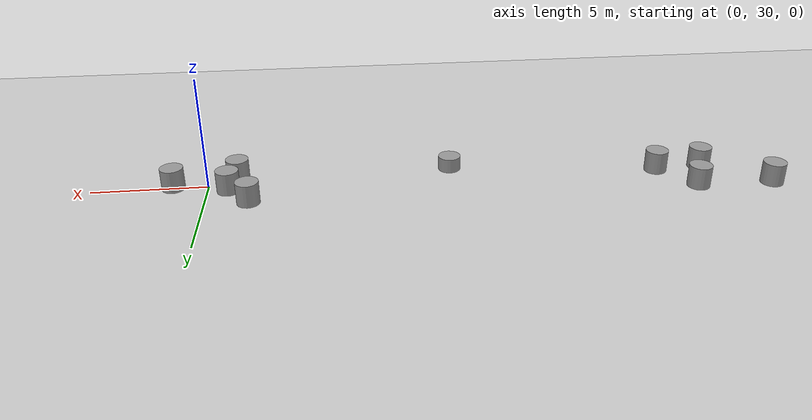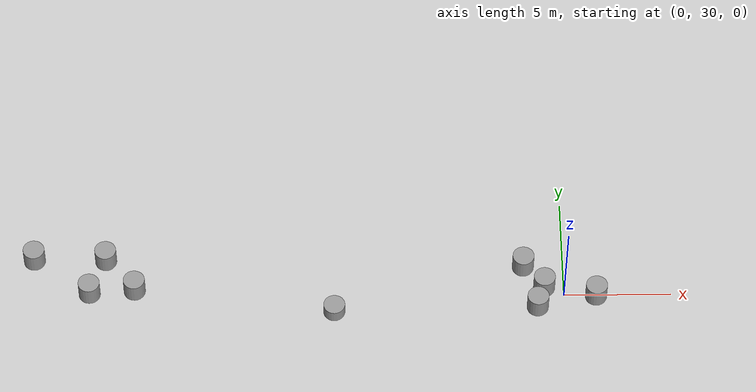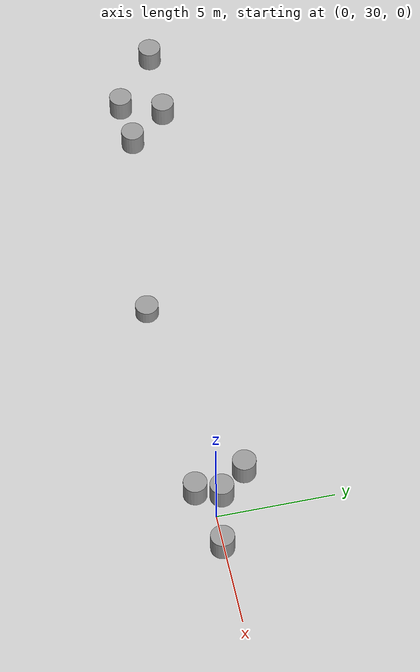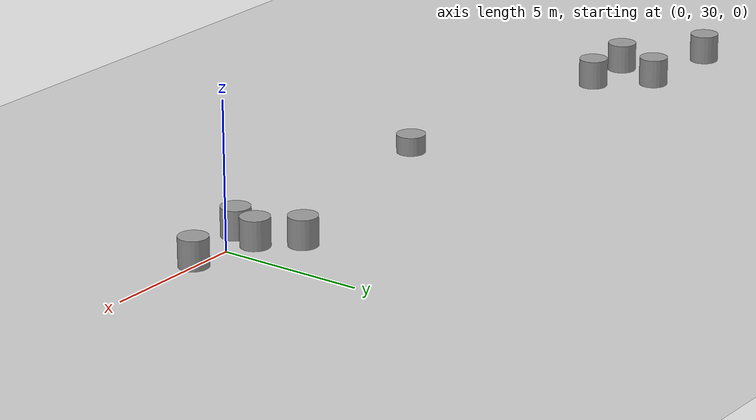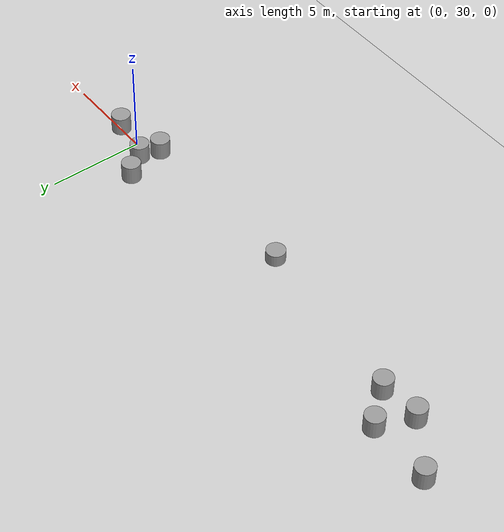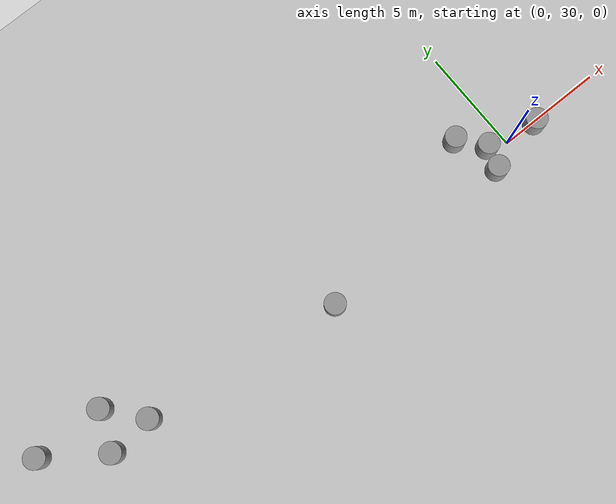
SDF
<sdf version="1.7">
 <world name="default">
  <model name="ground_plane">
   <static>1</static>
   <link name="link">
    <collision name="collision">
     <geometry><plane><normal>0 0 1</normal><size>300 300</size></plane></geometry>
     <surface><friction><ode><mu>100</mu><mu2>50</mu2></ode></friction></surface>
    </collision>
    <visual name="visual">
     <cast_shadows>0</cast_shadows>
     <geometry><plane><normal>0 0 1</normal><size>300 300</size></plane></geometry>
     <material>
      <script><uri>file://media/materials/scripts/gazebo.material</uri><name>Gazebo/Grey</name></script>
     </material>
    </visual>
   </link>
  </model>
  <model name="unit_cylinder_10">
   <pose>-19.9919 30.4384 0.499883 0 -0 0.040453</pose>
   <link name="link">
    <inertial>
     <mass>1</mass>
     <inertia><ixx>0.145833</ixx><ixy>0</ixy><ixz>0</ixz><iyy>0.145833</iyy><iyz>0</iyz><izz>0.125</izz></inertia>
    </inertial>
    <collision name="collision">
     <geometry><cylinder><radius>0.5</radius><length>1</length></cylinder></geometry>
    </collision>
    <visual name="visual">
     <geometry><cylinder><radius>0.5</radius><length>1</length></cylinder></geometry>
     <material>
      <script><name>Gazebo/Grey</name><uri>file://media/materials/scripts/gazebo.material</uri></script>
     </material>
    </visual>
   </link>
  </model>
  <model name="unit_cylinder_11">
   <pose>-22.0862 30.292 0.499883 0 -0 0</pose>
   <link name="link">
    <inertial>
     <mass>1</mass>
     <inertia><ixx>0.145833</ixx><ixy>0</ixy><ixz>0</ixz><iyy>0.145833</iyy><iyz>0</iyz><izz>0.125</izz></inertia>
    </inertial>
    <collision name="collision">
     <geometry><cylinder><radius>0.5</radius><length>1</length></cylinder></geometry>
    </collision>
    <visual name="visual">
     <geometry><cylinder><radius>0.5</radius><length>1</length></cylinder></geometry>
     <material>
      <script><name>Gazebo/Grey</name><uri>file://media/materials/scripts/gazebo.material</uri></script>
     </material>
    </visual>
   </link>
  </model>
  <model name="unit_cylinder_13">
   <pose>-24.7063 32.1533 0.499883 0 -0 0.840826</pose>
   <link name="link">
    <inertial>
     <mass>1</mass>
     <inertia><ixx>0.145833</ixx><ixy>0</ixy><ixz>0</ixz><iyy>0.145833</iyy><iyz>0</iyz><izz>0.125</izz></inertia>
    </inertial>
    <collision name="collision">
     <geometry><cylinder><radius>0.5</radius><length>1</length></cylinder></geometry>
    </collision>
    <visual name="visual">
     <geometry><cylinder><radius>0.5</radius><length>1</length></cylinder></geometry>
     <material>
      <script><name>Gazebo/Grey</name><uri>file://media/materials/scripts/gazebo.material</uri></script>
     </material>
    </visual>
   </link>
  </model>
  <model name="unit_cylinder_24">
   <pose>-21.3638 32.0946 0.499883 0 -0 0</pose>
   <link name="link">
    <inertial>
     <mass>1</mass>
     <inertia><ixx>0.145833</ixx><ixy>0</ixy><ixz>0</ixz><iyy>0.145833</iyy><iyz>0</iyz><izz>0.125</izz></inertia>
    </inertial>
    <collision name="collision">
     <geometry><cylinder><radius>0.5</radius><length>1</length></cylinder></geometry>
    </collision>
    <visual name="visual">
     <geometry><cylinder><radius>0.5</radius><length>1</length></cylinder></geometry>
     <material>
      <script><name>Gazebo/Grey</name><uri>file://media/materials/scripts/gazebo.material</uri></script>
     </material>
    </visual>
   </link>
  </model>
  <model name="unit_cylinder_6">
   <pose>-1.85405 31.5771 0.499883 0 -0 0</pose>
   <link name="link">
    <inertial>
     <mass>1</mass>
     <inertia><ixx>0.145833</ixx><ixy>0</ixy><ixz>0</ixz><iyy>0.145833</iyy><iyz>0</iyz><izz>0.125</izz></inertia>
    </inertial>
    <collision name="collision">
     <geometry><cylinder><radius>0.5</radius><length>1</length></cylinder></geometry>
    </collision>
    <visual name="visual">
     <geometry><cylinder><radius>0.5</radius><length>1</length></cylinder></geometry>
     <material>
      <script><name>Gazebo/Grey</name><uri>file://media/materials/scripts/gazebo.material</uri></script>
     </material>
    </visual>
   </link>
  </model>
  <model name="unit_cylinder_8">
   <pose>-0.904021 30.4247 0.499883 0 -0 0</pose>
   <link name="link">
    <inertial>
     <mass>1</mass>
     <inertia><ixx>0.145833</ixx><ixy>0</ixy><ixz>0</ixz><iyy>0.145833</iyy><iyz>0</iyz><izz>0.125</izz></inertia>
    </inertial>
    <collision name="collision">
     <geometry><cylinder><radius>0.5</radius><length>1</length></cylinder></geometry>
    </collision>
    <visual name="visual">
     <geometry><cylinder><radius>0.5</radius><length>1</length></cylinder></geometry>
     <material>
      <script><name>Gazebo/Grey</name><uri>file://media/materials/scripts/gazebo.material</uri></script>
     </material>
    </visual>
   </link>
  </model>
  <model name="unit_cylinder_9">
   <pose>-1.23487 29.3744 0.499883 0 -0 0</pose>
   <link name="link">
    <inertial>
     <mass>1</mass>
     <inertia><ixx>0.145833</ixx><ixy>0</ixy><ixz>0</ixz><iyy>0.145833</iyy><iyz>0</iyz><izz>0.125</izz></inertia>
    </inertial>
    <collision name="collision">
     <geometry><cylinder><radius>0.5</radius><length>1</length></cylinder></geometry>
    </collision>
    <visual name="visual">
     <geometry><cylinder><radius>0.5</radius><length>1</length></cylinder></geometry>
     <material>
      <script><name>Gazebo/Grey</name><uri>file://media/materials/scripts/gazebo.material</uri></script>
     </material>
    </visual>
   </link>
  </model>
  <model name="unit_cylinder_25">
   <pose>-10.6938 29.2357 0.114051 0.0016 -0.000377 -0.013105</pose>
   <link name="link">
    <inertial>
     <mass>1</mass>
     <inertia><ixx>0.145833</ixx><ixy>0</ixy><ixz>0</ixz><iyy>0.145833</iyy><iyz>0</iyz><izz>0.125</izz></inertia>
    </inertial>
    <collision name="collision">
     <geometry><cylinder><radius>0.5</radius><length>1</length></cylinder></geometry>
    </collision>
    <visual name="visual">
     <geometry><cylinder><radius>0.5</radius><length>1</length></cylinder></geometry>
     <material>
      <script><name>Gazebo/Grey</name><uri>file://media/materials/scripts/gazebo.material</uri></script>
     </material>
    </visual>
   </link>
  </model>
  <model name="unit_cylinder_100">
   <pose>1.4973 29.9374 0.499883 0 -0 0</pose>
   <link name="link">
    <inertial>
     <mass>1</mass>
     <inertia><ixx>0.145833</ixx><ixy>0</ixy><ixz>0</ixz><iyy>0.145833</iyy><iyz>0</iyz><izz>0.125</izz></inertia>
    </inertial>
    <collision name="collision">
     <geometry><cylinder><radius>0.5</radius><length>1</length></cylinder></geometry>
    </collision>
    <visual name="visual">
     <geometry><cylinder><radius>0.5</radius><length>1</length></cylinder></geometry>
     <material>
      <script><name>Gazebo/Grey</name><uri>file://media/materials/scripts/gazebo.material</uri></script>
     </material>
    </visual>
   </link>
  </model>
 </world>
</sdf>
